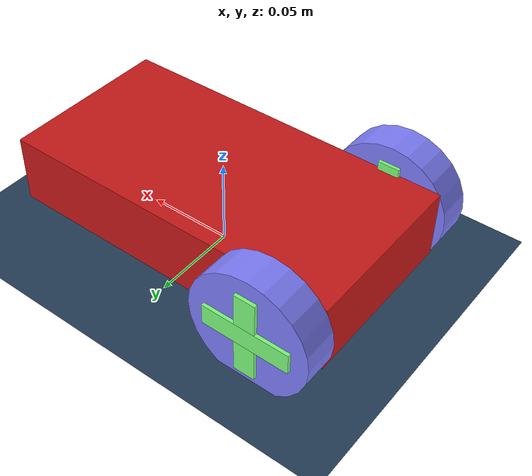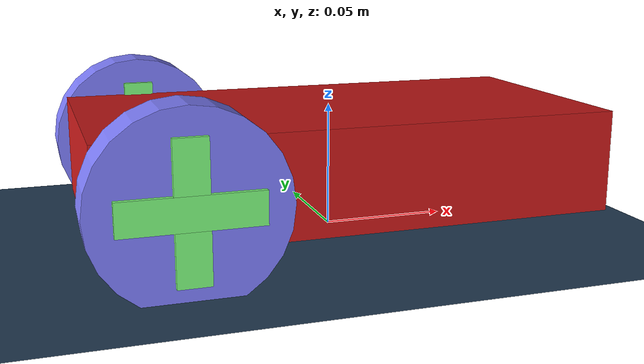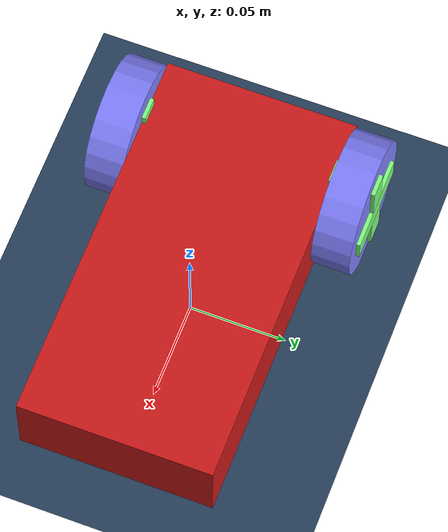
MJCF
<mujoco>
  <compiler autolimits="true"/>

  <option>
    <flag frictionloss="enable"/>
  </option>

  <asset>
    <texture name="grid" type="2d" builtin="checker" width="512" height="512" rgb1=".1 .2 .3" rgb2=".2 .3 .4"/>
    <material name="grid" texture="grid" texrepeat="1 1" texuniform="true" reflectance=".2"/>
  </asset>

  <default>
    <joint damping=".03" />
    <default class="wheel">
      <geom type="cylinder" size=".035 .01" rgba=".5 .5 1 1" friction="1 0.005 0.0001"/>
    </default>
    <default class="decor">
      <site type="box" rgba=".5 1 .5 1"/>
    </default>
  </default>

  <worldbody>
    <geom type="plane" size="3 3 .01" material="grid" friction="1 0.005 0.0001"/>
    <body name="car" pos="0 0 .03">
      <freejoint/>
      <light name="top light" pos="0 0 2" mode="trackcom" diffuse=".4 .4 .4"/>
      <geom name="chasis" type="box" size="0.1 0.05 0.02" rgba="0.8 0.1 0.1 1" mass="9"/>
      <geom name="front wheel" pos=".08 0 -.015" type="sphere" size=".02" condim="1" priority="1"/>
      <light name="front light" pos=".1 0 .02" dir="2 0 -1" diffuse="1 1 1"/>
      <body name="left wheel" pos="-.07 .06 0" zaxis="0 1 0">
        <joint name="left"/>
        <geom class="wheel"/>
        <site class="decor" size=".006 .025 .012"/>
        <site class="decor" size=".025 .006 .012"/>
      </body>
      <body name="right wheel" pos="-.07 -.06 0" zaxis="0 1 0">
        <joint name="right"/>
        <geom class="wheel"/>
        <site class="decor" size=".006 .025 .012"/>
        <site class="decor" size=".025 .006 .012"/>
      </body>
    </body>
  </worldbody>

  <tendon>
    <fixed name="forward">
      <joint joint="left" coef=".5"/>
      <joint joint="right" coef=".5"/>
    </fixed>
    <fixed name="turn">
      <joint joint="left" coef="-.5"/>
      <joint joint="right" coef=".5"/>
    </fixed>
  </tendon>

  <actuator>
    <motor name="forward" tendon="forward" ctrlrange="-1 1" gear="10"/>
    <!--motor name="left_motor" joint="left" gear="100"/!-->
    <!--motor name="right_motor" joint="right" gear="100"/!-->
    <motor name="turn" tendon="turn" ctrlrange="-1 1"/>
  </actuator>

  <sensor>
    <jointactuatorfrc name="right" joint="right"/>
    <jointactuatorfrc name="left" joint="left"/>
  </sensor>
</mujoco>
